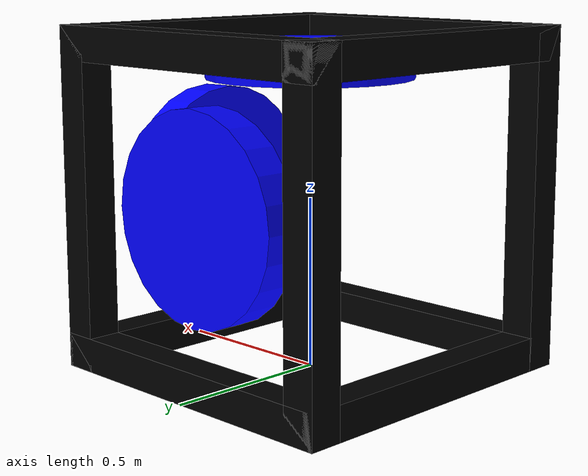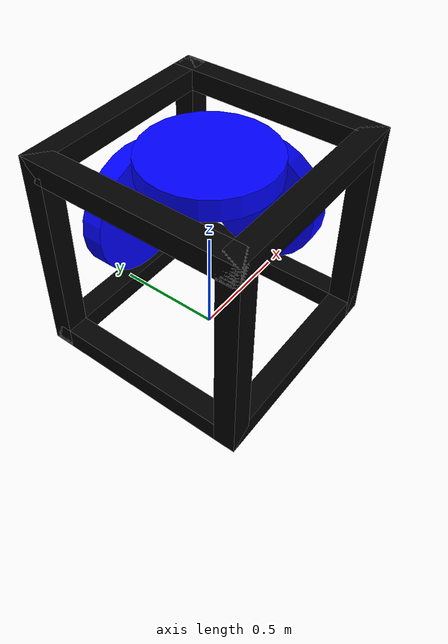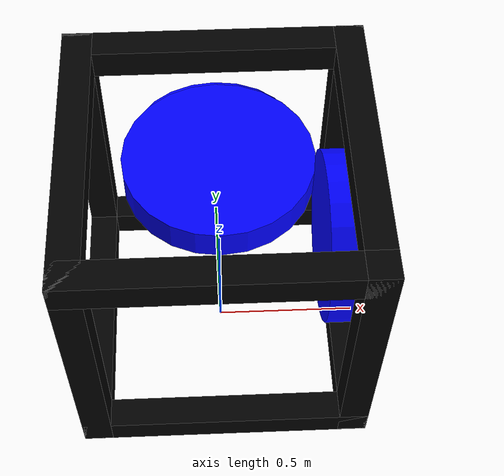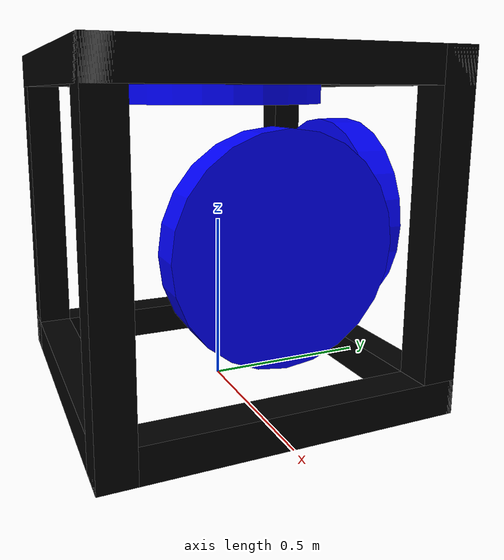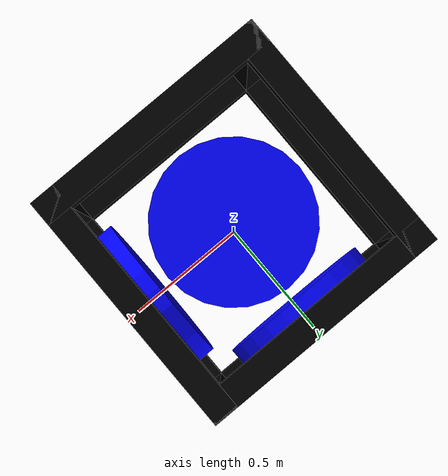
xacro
<?xml version="1.0"?>
<robot xmlns:xacro="http://www.ros.org/wiki/xacro" name="robot">

	   <!-- This first link called "world" is empty -->
    <link name="my world"></link>

        <!-- The base origin is offset from the world origin. -->
    <joint name="base_joint" type="fixed">
        <origin xyz="0 0 0" rpy="0 0 0"/>
        <parent link="my world"/>
        <child link="cube_frame"/>
    </joint>

  <!-- Define properties for cube dimensions -->
  <xacro:property name="cube_length" value="1.0"/>    <!-- Length of the cube -->
  <xacro:property name="cube_girth" value="0.1"/>     <!-- Thickness of the edges -->

  <!-- Center coordinates of the cube -->
  <xacro:property name="cube_x" value="0.0"/>
  <xacro:property name="cube_y" value="0.0"/>
  <xacro:property name="cube_z" value="${cube_length / 2}"/> <!-- Half the cube length -->

	<!-- Define properties for the disk dimensions -->
  <xacro:property name="disk_radius" value="0.3"/>        <!-- Radius of the disk -->
  <xacro:property name="disk_thickness" value="0.1"/>     <!-- Thickness (height) of the disk -->

	<!-- Macro for defining a visual edge -->
  <xacro:macro name="visual_edge" params="edge x y z r p yaw">
    <visual name="${edge}">
      <origin xyz="${x} ${y} ${z}" rpy="${r} ${p} ${yaw}"/>
      <geometry>
        <box size="${cube_girth} ${cube_girth} ${cube_length}"/>
      </geometry>
      <material name="Black">
        <color rgba="0 0 0 1"/> <!-- Blue color with RGBA values -->
      </material>
      <!-- Material and other visual properties can be added here -->
    </visual>
  </xacro:macro>

  <!-- Macro for defining a disk link-->
  <xacro:macro name="disk_link_macro" params="name xyz rpy radius thickness">
    <link name="${name}">
      <!-- Visual element for the disk -->
      <visual name="disk">
        <origin xyz="${xyz}" rpy="${rpy}"/>
        <geometry>
          <cylinder radius="${radius}" length="${thickness}"/>
        </geometry>
        <material name="Blue">
          <color rgba="0 0 1 1"/> <!-- Orange color with RGBA values -->
        </material>
      </visual>

      <!-- Collision properties for the disk -->
      <collision name="disk_collision">
        <origin xyz="${xyz}" rpy="${rpy}"/>
        <geometry>
          <cylinder radius="${radius}" length="${thickness}"/>
        </geometry>
      </collision>

      <!-- Inertial properties for the disk -->
      <inertial>
        <origin xyz="${xyz}"/>
        <mass value="1"/>
        <inertia ixx="0.1" ixy="0.0" ixz="0.0" iyy="0.1" iyz="0.0" izz="0.1"/>
      </inertial>
    </link>
  </xacro:macro>

  <!-- Main robot model -->
  <link name="cube_frame">
    <!-- Visual element for the main cube -->
    <xacro:visual_edge edge="ZXY" x="${(cube_length - cube_girth) / 2}" y="${cube_y+(cube_length - cube_girth) / 2}" z="${cube_z}" r="0" p="0" yaw="0"/>
	  <xacro:visual_edge edge="ZX_Y" x="${-(cube_length - cube_girth) / 2}" y="${cube_y+(cube_length - cube_girth) / 2}" z="${cube_z}" r="0" p="0" yaw="0"/>
	  <xacro:visual_edge edge="ZXY_" x="${(cube_length - cube_girth) / 2}" y="${cube_y-(cube_length - cube_girth) / 2}" z="${cube_z}" r="0" p="0" yaw="0"/>
	  <xacro:visual_edge edge="ZX_Y_" x="${-(cube_length - cube_girth) / 2}" y="${cube_y-(cube_length - cube_girth) / 2}" z="${cube_z}" r="0" p="0" yaw="0"/>

	  <xacro:visual_edge edge="XYZ" y="${(cube_length - cube_girth) / 2}" z="${cube_z+(cube_length/2)-(cube_girth/2)}" x="${cube_x}" r="0" p="${pi/2}" yaw="0"/>
	  <xacro:visual_edge edge="XY_Z" y="${-(cube_length - cube_girth) / 2}" z="${cube_z+(cube_length/2)-(cube_girth/2)}" x="${cube_x}" r="0" p="${pi/2}" yaw="0"/>
	  <xacro:visual_edge edge="XYZ_" y="${(cube_length - cube_girth) / 2}" z="${cube_z-(cube_length/2)+(cube_girth/2)}" x="${cube_x}" r="0" p="${pi/2}" yaw="0"/>
	  <xacro:visual_edge edge="XY_Z_" y="${-(cube_length - cube_girth) / 2}" z="${cube_z-(cube_length/2)+(cube_girth/2)}" x="${cube_x}" r="0" p="${pi/2}" yaw="0"/>

	  <xacro:visual_edge edge="YZX" z="${cube_z+(cube_length/2)-(cube_girth/2)}" x="${cube_x+(cube_length - cube_girth) / 2}" y="${cube_y}" r="${pi/2}" p="0" yaw="0"/>
	  <xacro:visual_edge edge="YZ_X" z="${cube_z-(cube_length/2)+(cube_girth/2)}" x="${cube_x+(cube_length - cube_girth) / 2}" y="${cube_y}" r="${pi/2}" p="0" yaw="0"/>
	  <xacro:visual_edge edge="YZX_" z="${cube_z+(cube_length/2)-(cube_girth/2)}" x="${cube_x-(cube_length - cube_girth) / 2}" y="${cube_y}" r="${pi/2}" p="0" yaw="0"/>
	  <xacro:visual_edge edge="YZ_X_" z="${cube_z-(cube_length/2)+(cube_girth/2)}" x="${cube_x-(cube_length - cube_girth) / 2}" y="${cube_y}" r="${pi/2}" p="0" yaw="0"/>

    <!-- Collision properties for the main link -->
    <collision name="collision">
      <origin xyz="${cube_x} ${cube_y} ${cube_z}"/>
      <geometry>
        <box size="${cube_length} ${cube_length} ${cube_length}"/>
      </geometry>
    </collision>

    <!-- Inertial properties -->
    <inertial>
      <origin xyz="${cube_x} ${cube_y} ${cube_z}"/>
      <mass value="1.0"/>
      <inertia ixx="0.1" ixy="0.0" ixz="0.0" iyy="0.1" iyz="0.0" izz="0.1"/>
    </inertial>
  </link>

  <gazebo reference="ZXY">
      <material>Gazebo/Black</material>
    </gazebo>

    <gazebo reference="ZX_Y">
      <material>Gazebo/Black</material>
    </gazebo>

    <gazebo reference="ZXY_">
      <material>Gazebo/Black</material>
    </gazebo>

    <gazebo reference="ZX_Y_">
      <material>Gazebo/Black</material>
    </gazebo>

    <gazebo reference="XYZ">
      <material>Gazebo/Black</material>
    </gazebo>

    <gazebo reference="XY_Z">
      <material>Gazebo/Black</material>
    </gazebo>

    <gazebo reference="XYZ_">
      <material>Gazebo/Black</material>
    </gazebo>

    <gazebo reference="XY_Z_">
      <material>Gazebo/Black</material>
    </gazebo>

    <gazebo reference="YZX">
      <material>Gazebo/Black</material>
    </gazebo>

    <gazebo reference="YZ_X">
      <material>Gazebo/Black</material>
    </gazebo>

    <gazebo reference="YZX_">
      <material>Gazebo/Black</material>
    </gazebo>

    <gazebo reference="YZ_X_">
      <material>Gazebo/Black</material>
    </gazebo>

  <!-- Defining the Three Disks -->
  <xacro:disk_link_macro name="disk_link_X" xyz="0 0 0" rpy="0 ${pi/2} 0" radius="${disk_radius}" thickness="${disk_thickness}"/>
  <xacro:disk_link_macro name="disk_link_Y" xyz="0 0 0" rpy="${pi/2} 0 0" radius="${disk_radius}" thickness="${disk_thickness}"/>
  <xacro:disk_link_macro name="disk_link_Z" xyz="0 0 0" rpy="0 0 0" radius="${disk_radius}" thickness="${disk_thickness}"/>

    <gazebo reference="disk_link_X">
      <material>Gazebo/Blue</material>
    </gazebo>
    <gazebo reference="disk_link_Y">
      <material>Gazebo/Blue</material>
    </gazebo>
    <gazebo reference="disk_link_Z">
      <material>Gazebo/Blue</material>
    </gazebo>

  <!-- Joint between cube_frame and disk_links -->
  <joint name="cube_disk_joint_X" type="continuous">
    <origin xyz="${cube_x+(cube_length/2)-disk_thickness} ${cube_y} ${cube_z}"/>
    <parent link="cube_frame"/>
    <child link="disk_link_X"/>
    <axis xyz="1 0 0"/> <!-- Rotation axis along the z-axis (adjust as needed) -->
    <!--limit effort="100000.0" velocity="100000.0"/--> <!-- Joint effort and velocity limits (adjust as needed) -->
  </joint>

   <joint name="cube_disk_joint_Y" type="continuous">
    <origin xyz="${cube_x} ${cube_y+(cube_length/2)-disk_thickness} ${cube_z}"/>
    <parent link="cube_frame"/>
    <child link="disk_link_Y"/>
    <axis xyz="0 1 0"/> <!-- Rotation axis along the z-axis (adjust as needed) -->
  </joint>

   <joint name="cube_disk_joint_Z" type="continuous">
    <origin xyz="${cube_x} ${cube_y} ${cube_z+(cube_length/2)-disk_thickness}"/>
    <parent link="cube_frame"/>
    <child link="disk_link_Z"/>
    <axis xyz="0 0 1"/> <!-- Rotation axis along the z-axis (adjust as needed) -->
  </joint>

  <ros2_control name ="GazeboSystem" type="system">
    <hardware>
      <plugin>gazebo_ros2_control/GazeboSystem</plugin>
    </hardware>
    <joint name="cube_disk_joint_X">
        <command_interface name="effort"/>
        <state_interface name="velocity"/>
        <state_interface name="position"/>
        <state_interface name="effort"/>
    </joint >
    <joint name="cube_disk_joint_Y">
        <command_interface name="effort"/>
        <state_interface name="velocity"/>
        <state_interface name="position"/>
        <state_interface name="effort"/>
    </joint >
    <joint name="cube_disk_joint_Z">
        <command_interface name="effort"/>
        <state_interface name="velocity"/>
        <state_interface name="position"/>
        <state_interface name="effort"/>
    </joint >
  </ros2_control>

  <gazebo>
    <plugin name="gazebo_ros2_control" filename="libgazebo_ros2_control.so">
    <parameters>$(find motion)/config/controllers.yaml</parameters>
    <robot_param>robot_description</robot_param>
    <robot_param_node>robot_state_publisher</robot_param_node>
    </plugin>
  </gazebo>

</robot>
